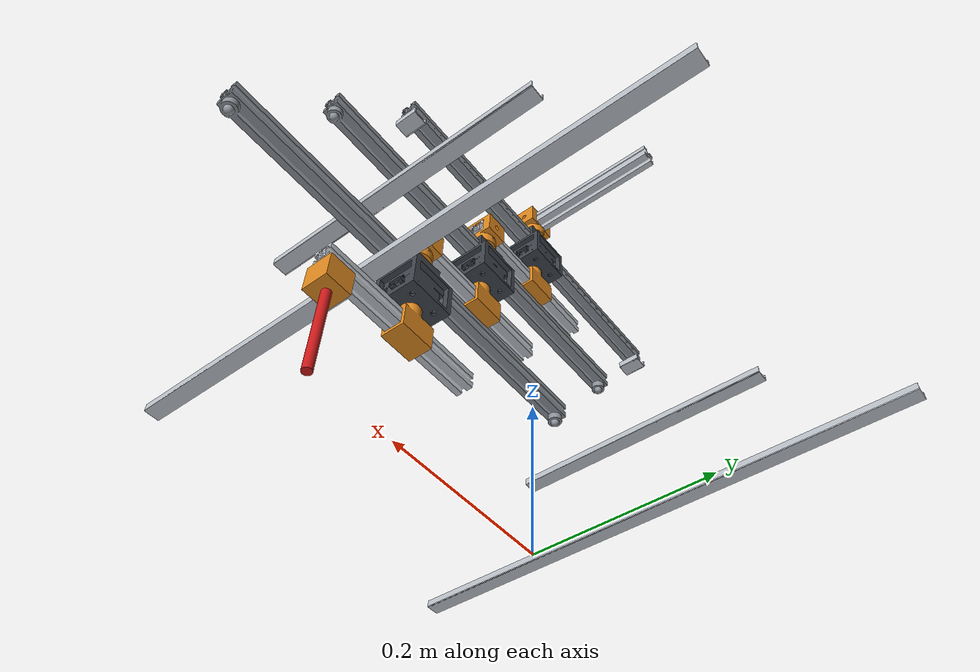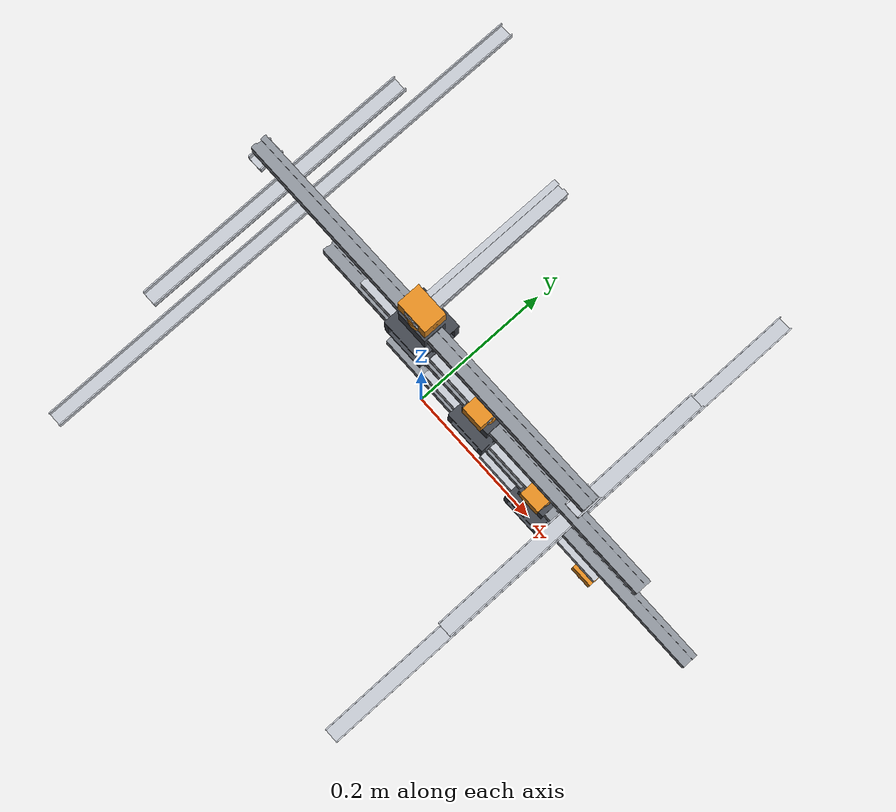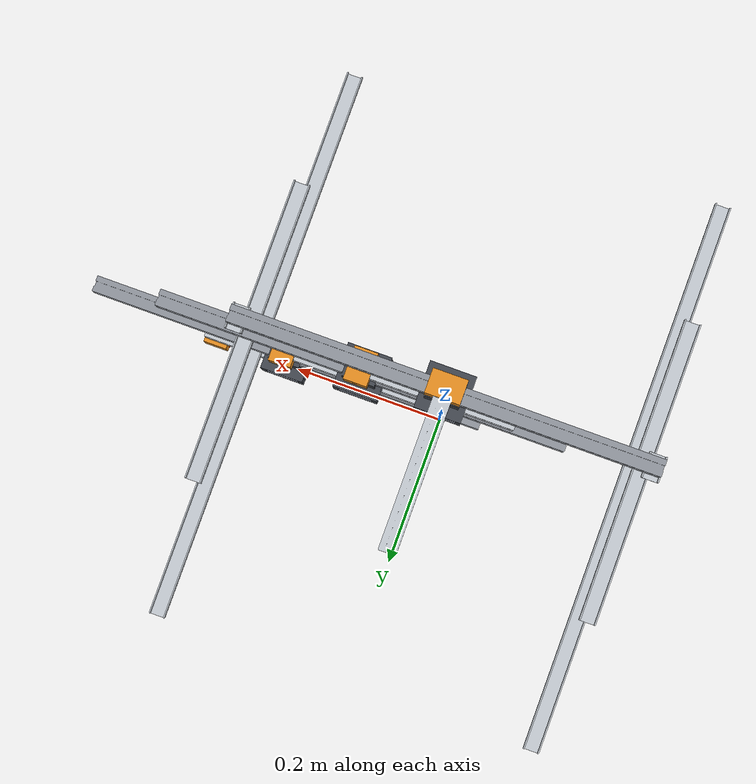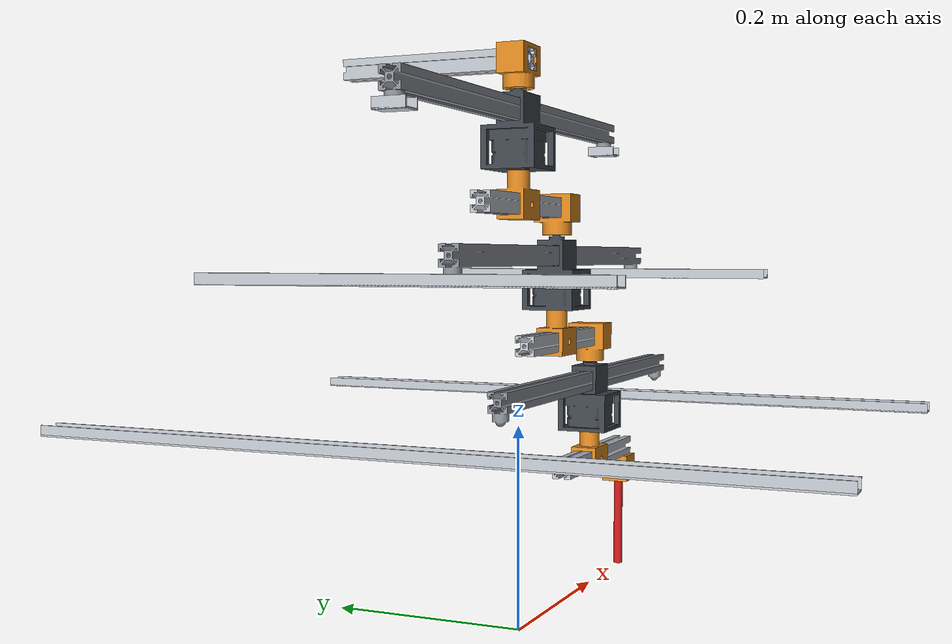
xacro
<?xml version="1.0"?>
<robot name="epicycle_layers" xmlns:xacro="http://www.ros.org/wiki/xacro">
  <xacro:arg name="rest_radius" default="0.0"/>  <!-- Godot: 0.07 so the URDF zero pose is a real radius -->
  <xacro:arg name="mesh_path" default="package://robot_art_layer/meshes/"/>
  <xacro:property name="M" value="$(arg mesh_path)"/>
  <xacro:property name="R0" value="$(arg rest_radius)"/>
  <xacro:include filename="robot_art_parts.xacro"/>
  <xacro:property name="layer_drop" value="0.1363"/>
  <xacro:property name="pen_drop" value="0.140"/>     <!-- bar centre line -> pen tip -->
  <xacro:property name="top_z" value="${3*layer_drop + pen_drop}"/>  <!-- gantry bar height: pen tip lands on z = 0 -->

  <xacro:macro name="layer" params="i parent">
    <joint name="clampA${i}" type="fixed">
      <parent link="${parent}"/><child link="clampA${i}"/><origin xyz="0 0 0"/>
    </joint>
    <xacro:clampA_link name="clampA${i}"/>

    <xacro:if value="${i == 1}">
      <joint name="pivot${i}" type="fixed">
        <parent link="clampA${i}"/><child link="motor${i}"/><origin xyz="0 0 ${pivot_z}"/>
      </joint>
    </xacro:if>
    <xacro:unless value="${i == 1}">
      <!-- the bar above lies 90 deg round from the motor's support-bar direction, hence the -90 deg yaw -->
      <joint name="pivot${i}" type="continuous">
        <parent link="clampA${i}"/><child link="motor${i}"/><origin xyz="0 0 ${pivot_z}" rpy="0 0 ${-pi/2}"/>
        <axis xyz="0 0 1"/><limit effort="0" velocity="10"/><dynamics friction="0.002" damping="0.0"/>
        <mimic joint="joint${i-1}" multiplier="-1" offset="0"/>
      </joint>
    </xacro:unless>
    <xacro:motor_link name="motor${i}"/>
    <xacro:support_link name="support${i}" parent="motor${i}"/>
    <joint name="encoder${i}_mount" type="fixed">
      <parent link="motor${i}"/><child link="encoder${i}"/><origin xyz="0 0 -0.0479"/>
    </joint>
    <link name="encoder${i}"><inertial><mass value="0.001"/><inertia ixx="1e-9" ixy="0" ixz="0" iyy="1e-9" iyz="0" izz="1e-9"/></inertial></link>

    <joint name="joint${i}" type="continuous">
      <parent link="motor${i}"/><child link="hub${i}"/>
      <origin xyz="0 0 ${motor_z}"/><axis xyz="0 0 1"/>
      <limit effort="${motor_torque}" velocity="${max_speed}"/><dynamics damping="0.0"/>
    </joint>
    <link name="hub${i}">
      <visual><geometry><mesh filename="${M}hub.stl" scale="${S}"/></geometry><material name="orange"/></visual>
      <collision><origin xyz="0 0 -0.0135"/><geometry><cylinder radius="0.011" length="0.018"/></geometry></collision>
      <collision><origin xyz="0 0 ${clampB_z}"/><geometry><box size="0.040 0.028 0.0284"/></geometry></collision>
      <inertial><origin xyz="-0.00000 0.00004 -0.02232"/><mass value="0.0208"/><inertia ixx="5.9366e-06" ixy="3.9488e-16" ixz="-1.5550e-12" iyy="6.2704e-06" iyz="1.3147e-08" izz="2.9028e-06"/></inertial>
    </link>

    <!-- the next bar slides through clamp B; at joint = 0 the arm points along +X (rpy turns the bar mesh 90 deg) -->
    <joint name="clampB${i}" type="prismatic">
      <parent link="hub${i}"/><child link="bar${i}"/>
      <origin xyz="${R0} 0 ${clampB_z}" rpy="0 0 ${pi/2}"/><axis xyz="0 -1 0"/>
      <limit lower="${r_min - R0}" upper="${r_max - R0}" effort="20" velocity="0.05"/><dynamics damping="0.5"/>
    </joint>
    <xacro:bar_link name="bar${i}"/>

    <!-- tracks: long enough for the motor axis to reach (i-1) * r_max either side, plus the ball unit -->
    <xacro:property name="tz" value="${top_z - (i-1)*layer_drop + pivot_z + track_floor}"/>
    <xacro:property name="tl" value="${2*(i-1)*r_max + 0.03}"/>
    <xacro:track name="track${i}_L" x="${-track_x}" y="0" z="${tz}" length="${tl}"/>
    <xacro:track name="track${i}_R" x="${track_x}"  y="0" z="${tz}" length="${tl}"/>
  </xacro:macro>

  <!-- ===== 3 layers hanging from a fixed gantry bar ===== -->
  <link name="world"/>
  <joint name="gantry_fixed" type="fixed">
    <parent link="world"/><child link="bar0"/>
    <origin xyz="0 0 ${top_z}"/>
  </joint>
  <xacro:bar_link name="bar0"/>
  <xacro:layer i="1" parent="bar0"/>
  <xacro:layer i="2" parent="bar1"/>
  <xacro:layer i="3" parent="bar2"/>

  <!-- pen at the end of the last bar (where a 4th layer's clamp A would go) -->
  <joint name="pen_mount" type="fixed">
    <parent link="bar3"/><child link="pen"/><origin xyz="0 0 -0.010"/>
  </joint>
  <link name="pen">
    <visual><origin xyz="0 0 -0.015"/><geometry><box size="0.03 0.03 0.03"/></geometry><material name="orange"/></visual>
    <visual><origin xyz="0 0 -0.080"/><geometry><cylinder radius="0.005" length="0.100"/></geometry><material name="red"/></visual>
    <collision><origin xyz="0 0 -0.080"/><geometry><cylinder radius="0.005" length="0.100"/></geometry></collision>
    <inertial><origin xyz="0 0 -0.04"/><mass value="0.03"/><inertia ixx="2e-5" ixy="0" ixz="0" iyy="2e-5" iyz="0" izz="1e-6"/></inertial>
  </link>
  <joint name="pen_tip_mount" type="fixed">
    <parent link="pen"/><child link="pen_tip"/><origin xyz="0 0 -0.130"/>
  </joint>
  <link name="pen_tip"><inertial><mass value="0.001"/><inertia ixx="1e-9" ixy="0" ixz="0" iyy="1e-9" iyz="0" izz="1e-9"/></inertial></link>
</robot>

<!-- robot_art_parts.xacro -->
<!--
  Shared link definitions for the Robot Art layer (included by both robot files).
  Numbers come from the CAD (cad/RobotArtLayer.FCStd). Units m, kg, rad.
-->
<robot xmlns:xacro="http://www.ros.org/wiki/xacro">
  <xacro:property name="S" value="0.001 0.001 0.001"/>
  <!-- offsets measured from the CAD -->
  <xacro:property name="pivot_z"  value="-0.0237"/>  <!-- 200 mm bar centre line -> bearing centre (top pivot) -->
  <xacro:property name="motor_z"  value="-0.0759"/>  <!-- top pivot -> motor front face (bottom pivot) -->
  <xacro:property name="clampB_z" value="-0.0367"/>  <!-- motor face -> next bar centre line -->
  <xacro:property name="r_min" value="0.030"/>
  <xacro:property name="r_max" value="0.170"/>
  <xacro:property name="motor_torque" value="0.13"/> <!-- N m, NEMA 17 pancake holding torque -->
  <xacro:property name="max_speed" value="1.0"/>     <!-- rad/s -->
  <!-- 500 mm support bar + tracks -->
  <xacro:property name="track_x"     value="0.242"/>   <!-- ball units sit 242 mm either side of the bar centre -->
  <xacro:property name="track_floor" value="-0.0477"/> <!-- ball bottom = track floor, below the top pivot -->
  <xacro:property name="slide_max"   value="0.214"/>   <!-- carriage (40 mm) can run until it meets a ball unit -->

  <material name="orange"><color rgba="0.88 0.54 0.12 1"/></material>
  <material name="alu"><color rgba="0.75 0.77 0.80 1"/></material>
  <material name="dark"><color rgba="0.25 0.27 0.30 1"/></material>
  <material name="red"><color rgba="0.8 0.1 0.1 1"/></material>
  <material name="steel"><color rgba="0.55 0.57 0.60 1"/></material>

  <xacro:macro name="bar_link" params="name">
    <link name="${name}">
      <visual><geometry><mesh filename="${M}bar.stl" scale="${S}"/></geometry><material name="alu"/></visual>
      <collision><origin xyz="0 0.086 0"/><geometry><box size="0.02 0.2 0.02"/></geometry></collision>
      <inertial><origin xyz="-0.00000 0.08600 0.00000"/><mass value="0.1000"/><inertia ixx="3.3741e-04" ixy="-8.6845e-21" ixz="-3.3719e-10" iyy="8.1483e-06" iyz="-3.5730e-21" izz="3.3741e-04"/></inertial>
    </link>
  </xacro:macro>

  <xacro:macro name="clampA_link" params="name">
    <link name="${name}">
      <visual><geometry><mesh filename="${M}clampA.stl" scale="${S}"/></geometry><material name="orange"/></visual>
      <collision><geometry><box size="0.040 0.028 0.0284"/></geometry></collision>
      <collision><origin xyz="0 0 -0.0207"/><geometry><cylinder radius="0.015" length="0.013"/></geometry></collision>
      <inertial><origin xyz="-0.00011 0.00000 -0.01275"/><mass value="0.0280"/><inertia ixx="6.2275e-06" ixy="-7.0054e-12" ixz="3.6730e-08" iyy="7.7408e-06" iyz="6.4456e-10" izz="4.3962e-06"/></inertial>
    </link>
  </xacro:macro>

  <!-- carriage + motor cage + pivot pin + encoder board + NEMA 17. Its X axis is the support bar direction. -->
  <xacro:macro name="motor_link" params="name">
    <link name="${name}">
      <visual><geometry><mesh filename="${M}motor.stl" scale="${S}"/></geometry><material name="dark"/></visual>
      <collision><origin xyz="0 0 -0.0237"/><geometry><box size="0.040 0.028 0.0304"/></geometry></collision>
      <collision><origin xyz="0 0 -0.0594"/><geometry><box size="0.0543 0.0543 0.041"/></geometry></collision>
      <inertial><origin xyz="0.00009 -0.00000 -0.05783"/><mass value="0.2011"/><inertia ixx="9.6019e-05" ixy="-3.2819e-11" ixz="5.4181e-09" iyy="9.6824e-05" iyz="-4.1809e-09" izz="5.7848e-05"/></inertial>
    </link>
  </xacro:macro>

  <!-- 500 mm 2020 support bar + 2 ball units. Never turns; slides through the carriage (passive). -->
  <xacro:macro name="support_link" params="name parent">
    <joint name="${name}" type="prismatic">
      <parent link="${parent}"/><child link="${name}_bar"/><origin xyz="0 0 0"/><axis xyz="1 0 0"/>
      <!-- value = support bar centre minus carriage centre, along the bar. Passive (effort 0). -->
      <limit lower="${-slide_max}" upper="${slide_max}" effort="0" velocity="1.0"/><dynamics friction="0.5" damping="0.0"/>
    </joint>
    <link name="${name}_bar">
      <visual><geometry><mesh filename="${M}support.stl" scale="${S}"/></geometry><material name="steel"/></visual>
      <collision><origin xyz="0 0 -0.0247"/><geometry><box size="0.50 0.02 0.02"/></geometry></collision>
      <collision><origin xyz="${-track_x} 0 -0.0387"/><geometry><cylinder radius="0.008" length="0.008"/></geometry></collision>
      <collision><origin xyz="${track_x} 0 -0.0387"/><geometry><cylinder radius="0.008" length="0.008"/></geometry></collision>
      <inertial><origin xyz="0 0 -0.02559"/><mass value="0.2660"/><inertia ixx="2.4046e-05" ixy="0" ixz="0" iyy="6.1592e-03" iyz="0" izz="6.1560e-03"/></inertial>
    </link>
  </xacro:macro>

  <!-- one U-channel track (20 x 10 x 1.5 mm aluminium, inner gap 17 mm) fixed to the frame, running along Y.
       Frame origin = middle of the track floor, where the ball unit rolls. -->
  <xacro:macro name="track" params="name x y z length">
    <joint name="${name}_fixed" type="fixed">
      <parent link="world"/><child link="${name}"/><origin xyz="${x} ${y} ${z}"/>
    </joint>
    <link name="${name}">
      <visual><origin xyz="0 0 -0.00075"/><geometry><box size="0.020 ${length} 0.0015"/></geometry><material name="alu"/></visual>
      <visual><origin xyz="-0.00925 0 0.0035"/><geometry><box size="0.0015 ${length} 0.010"/></geometry><material name="alu"/></visual>
      <visual><origin xyz="0.00925 0 0.0035"/><geometry><box size="0.0015 ${length} 0.010"/></geometry><material name="alu"/></visual>
    </link>
  </xacro:macro>
</robot>
